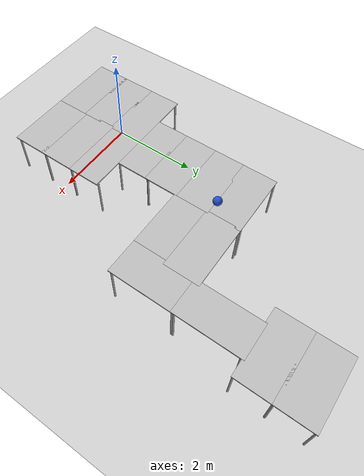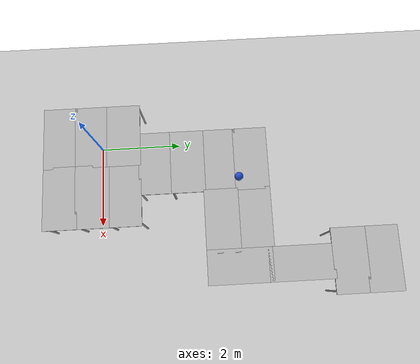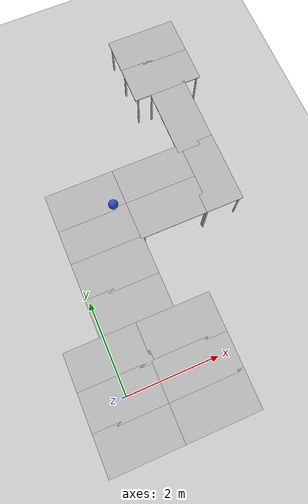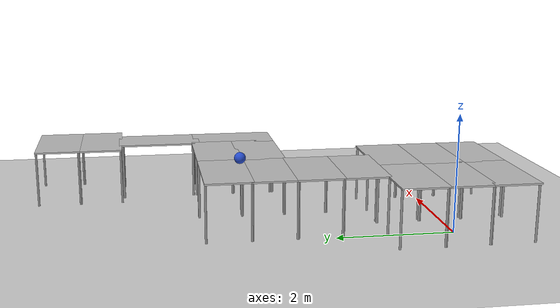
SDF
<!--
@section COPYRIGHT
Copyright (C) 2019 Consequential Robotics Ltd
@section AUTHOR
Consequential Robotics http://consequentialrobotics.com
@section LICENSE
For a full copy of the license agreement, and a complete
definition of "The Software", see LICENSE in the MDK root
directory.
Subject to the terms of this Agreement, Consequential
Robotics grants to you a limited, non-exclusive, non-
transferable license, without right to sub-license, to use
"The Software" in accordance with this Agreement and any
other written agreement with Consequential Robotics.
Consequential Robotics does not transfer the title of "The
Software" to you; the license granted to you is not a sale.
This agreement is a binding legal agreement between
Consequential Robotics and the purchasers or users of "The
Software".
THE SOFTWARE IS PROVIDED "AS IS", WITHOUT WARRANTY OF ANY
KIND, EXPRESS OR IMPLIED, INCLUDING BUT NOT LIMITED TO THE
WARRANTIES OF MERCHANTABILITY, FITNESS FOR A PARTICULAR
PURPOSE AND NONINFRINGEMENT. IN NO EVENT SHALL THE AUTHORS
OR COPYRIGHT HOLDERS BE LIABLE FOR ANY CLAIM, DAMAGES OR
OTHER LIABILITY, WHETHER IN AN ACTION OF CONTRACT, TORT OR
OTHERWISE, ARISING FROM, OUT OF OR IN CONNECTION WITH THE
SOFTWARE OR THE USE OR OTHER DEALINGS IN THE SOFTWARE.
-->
<sdf version="1.5">
 <world name="default">
  <physics name="default_physics" default="0" type="ode">
   <max_step_size>0.001</max_step_size>
   <real_time_factor>1</real_time_factor>
   <real_time_update_rate>1000</real_time_update_rate>
  </physics>
  <scene><ambient>0.4 0.4 0.4 1</ambient><background>0.7 0.7 0.7 1</background><shadows>1</shadows></scene>
  <light name="sun" type="directional">
   <pose>0 0 10 0 -0 0</pose>
   <diffuse>0.8 0.8 0.8 1</diffuse>
   <specular>0.1 0.1 0.1 1</specular>
   <attenuation>
    <range>1000</range>
    <constant>0.9</constant>
    <linear>0.01</linear>
    <quadratic>0.001</quadratic>
   </attenuation>
   <direction>-0.5 0.5 -1</direction>
  </light>
  <include><uri>model://ground_plane</uri></include>
  <include><uri>model://miro_toy_ball</uri><pose>1.17628 3.43905 1.115 0 0 0</pose></include>
  <include><name>miro_table-14</name><uri>model://miro_table</uri><pose>0 -0.75 0 0 0 0</pose></include>
  <include><name>miro_table-15</name><uri>model://miro_table</uri><pose>1.45 -0.75 0 0 0 0</pose></include>
  <include><name>miro_table-0</name><uri>model://miro_table</uri></include>
  <include><name>miro_table-1</name><uri>model://miro_table</uri><pose>1.45 0 0 0 0 0</pose></include>
  <include><name>miro_table-2</name><uri>model://miro_table</uri><pose>0 0.75 0 0 0 0</pose></include>
  <include><name>miro_table-3</name><uri>model://miro_table</uri><pose>1.45 0.75 0 0 0 0</pose></include>
  <include><name>miro_table-4</name><uri>model://miro_table</uri><pose>0.725 1.5 0 0 0 0</pose></include>
  <include><name>miro_table-5</name><uri>model://miro_table</uri><pose>0.725 2.25 0 0 0 0</pose></include>
  <include><name>miro_table-6</name><uri>model://miro_table</uri><pose>0.725 3 0 0 0 0</pose></include>
  <include><name>miro_table-7</name><uri>model://miro_table</uri><pose>0.725 3.75 0 0 0 0</pose></include>
  <include><name>miro_table-8</name><uri>model://miro_table</uri><pose>2.175 3 0 0 0 0</pose></include>
  <include><name>miro_table-9</name><uri>model://miro_table</uri><pose>2.175 3.75 0 0 0 0</pose></include>
  <include><name>miro_table-10</name><uri>model://miro_table</uri><pose>3.23 3.35 0 0 0 1.57</pose></include>
  <include><name>miro_table-11</name><uri>model://miro_table</uri><pose>3.23 4.75 0 0 0 1.57</pose></include>
  <include><name>miro_table-12</name><uri>model://miro_table</uri><pose>3.23 5.85 0 0 0 0</pose></include>
  <include><name>miro_table-13</name><uri>model://miro_table</uri><pose>3.23 6.6 0 0 0 0</pose></include>
  <light name="spot-light-0" type="spot">
   <pose>2.30789 0.093 1.55469 0 0.641896 0</pose>
   <diffuse>0.5 0.5 0.5 1</diffuse>
   <specular>0.1 0.1 0.1 1</specular>
   <direction>0 0 -1</direction>
   <attenuation>
    <range>20</range>
    <constant>0.5</constant>
    <linear>0.01</linear>
    <quadratic>0.001</quadratic>
   </attenuation>
   <cast_shadows>0</cast_shadows>
  </light>
  <gravity>0 0 -9.8</gravity>
  <magnetic_field>6e-06 2.3e-05 -4.2e-05</magnetic_field>
  <atmosphere type="adiabatic"/>
  <spherical_coordinates>
   <surface_model>EARTH_WGS84</surface_model>
   <latitude_deg>0</latitude_deg>
   <longitude_deg>0</longitude_deg>
   <elevation>0</elevation>
   <heading_deg>0</heading_deg>
  </spherical_coordinates>
 </world>
</sdf>

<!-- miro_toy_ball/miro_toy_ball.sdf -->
<sdf version="1.4">
	<model name="miro_toy_ball">
		<link name='link'>
			<inertial>
				<mass>0.000419</mass>
				<inertia>
					<ixx>0.00000279</ixx>
					<ixy>0</ixy>
					<ixz>0</ixz>
					<iyy>0.00000279</iyy>
					<iyz>0</iyz>
					<izz>0.00000279</izz>
				</inertia>
			</inertial>
			<collision name='collision'>
				<geometry>
					<sphere>
						<radius>0.1</radius>
					</sphere>
				</geometry>
				<surface>
					<bounce />
					<friction>
						<ode />
					</friction>
					<contact>
						<ode />
					</contact>
				</surface>
			</collision>
			<visual name='visual'>
				<geometry>
					<sphere>
						<radius>0.1</radius>
					</sphere>
				</geometry>
				<material>
					<script>
						<name>Gazebo/Blue</name>
					</script>
				</material>
			</visual>
			<velocity_decay>
				<linear>0</linear>
				<angular>0</angular>
			</velocity_decay>
			<self_collide>0</self_collide>
			<kinematic>0</kinematic>
			<gravity>1</gravity>
		</link>
	</model>
</sdf>

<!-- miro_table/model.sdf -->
<sdf version="1.5">
  <model name="table">
    <static>true</static>
    <link name="link">
      <collision name="surface">
        <pose>0 0 1.0 0 0 0</pose>
        <geometry>
          <box>
            <size>1.5 0.8 0.03</size>
          </box>
        </geometry>
        <surface>
          <friction>
            <ode>
              <mu>0.6</mu>
              <mu2>0.6</mu2>
            </ode>
          </friction>
        </surface>
      </collision>
      <visual name="visual1">
        <pose>0 0 1.0 0 0 0</pose>
        <geometry>
          <box>
            <size>1.5 0.8 0.03</size>
          </box>
        </geometry>
        <material>
          <script>
            <uri>model://miro_table/materials/scripts</uri>
            <uri>model://miro_table/materials/textures</uri>
            <name>miro_table/Diffuse</name>
          </script>
        </material>
      </visual>
      <collision name="front_left_leg">
        <pose>0.68 0.38 0.5 0 0 0</pose>
        <geometry>
          <cylinder>
            <radius>0.02</radius>
            <length>1.0</length>
          </cylinder>
        </geometry>
      </collision>
      <visual name="front_left_leg">
        <pose>0.68 0.38 0.5 0 0 0</pose>
        <geometry>
          <cylinder>
            <radius>0.02</radius>
            <length>1.0</length>
          </cylinder>
        </geometry>
        <material>
          <script>
            <uri>file://media/materials/scripts/gazebo.material</uri>
            <name>Gazebo/Grey</name>
          </script>
        </material>
      </visual>
      <collision name="front_right_leg">
        <pose>0.68 -0.38 0.5 0 0 0</pose>
        <geometry>
          <cylinder>
            <radius>0.02</radius>
            <length>1.0</length>
          </cylinder>
        </geometry>
      </collision>
      <visual name="front_right_leg">
        <pose>0.68 -0.38 0.5 0 0 0</pose>
        <geometry>
          <cylinder>
            <radius>0.02</radius>
            <length>1.0</length>
          </cylinder>
        </geometry>
        <material>
          <script>
            <uri>file://media/materials/scripts/gazebo.material</uri>
            <name>Gazebo/Grey</name>
          </script>
        </material>
      </visual>
      <collision name="back_right_leg">
        <pose>-0.68 -0.38 0.5 0 0 0</pose>
        <geometry>
          <cylinder>
            <radius>0.02</radius>
            <length>1.0</length>
          </cylinder>
        </geometry>
      </collision>
      <visual name="back_right_leg">
        <pose>-0.68 -0.38 0.5 0 0 0</pose>
        <geometry>
          <cylinder>
            <radius>0.02</radius>
            <length>1.0</length>
          </cylinder>
        </geometry>
        <material>
          <script>
            <uri>file://media/materials/scripts/gazebo.material</uri>
            <name>Gazebo/Grey</name>
          </script>
        </material>
      </visual>
      <collision name="back_left_leg">
        <pose>-0.68 0.38 0.5 0 0 0</pose>
        <geometry>
          <cylinder>
            <radius>0.02</radius>
            <length>1.0</length>
          </cylinder>
        </geometry>
      </collision>
      <visual name="back_left_leg">
        <pose>-0.68 0.38 0.5 0 0 0</pose>
        <geometry>
          <cylinder>
            <radius>0.02</radius>
            <length>1.0</length>
          </cylinder>
        </geometry>
        <material>
          <script>
            <uri>file://media/materials/scripts/gazebo.material</uri>
            <name>Gazebo/Grey</name>
          </script>
        </material>
      </visual>
    </link>
  </model>
</sdf>
